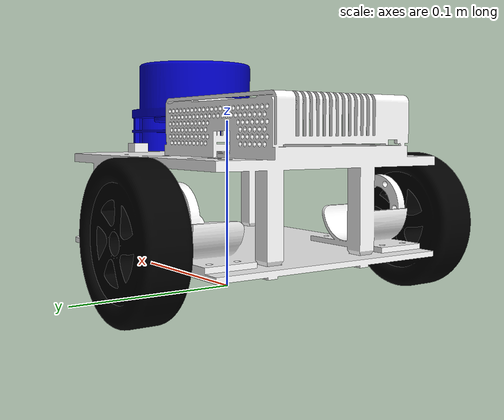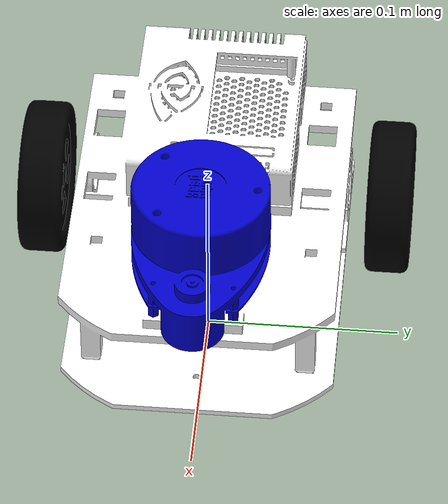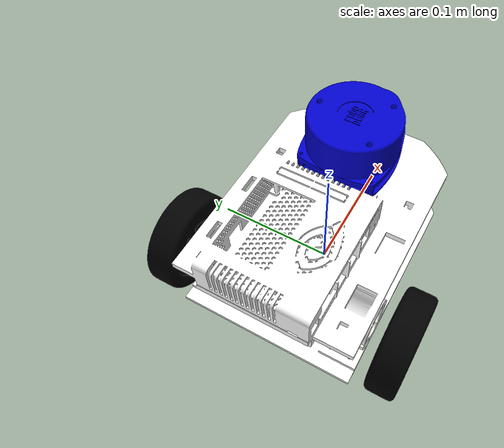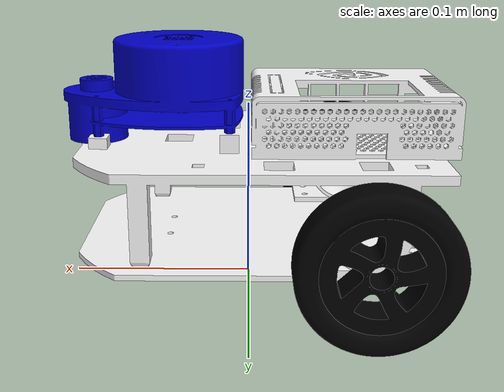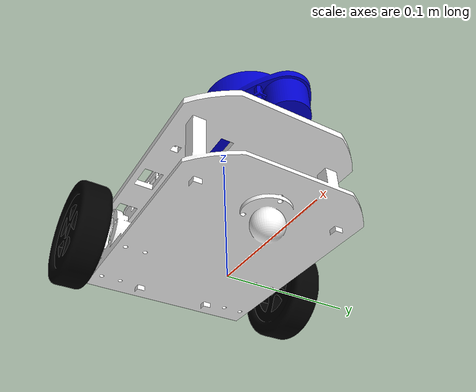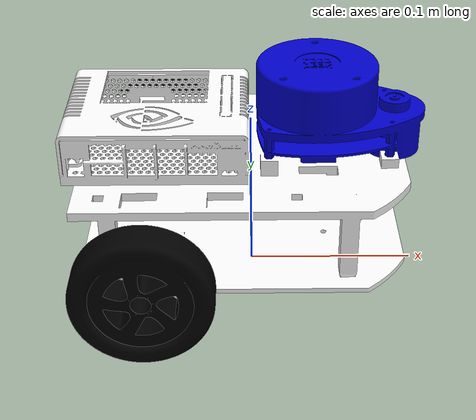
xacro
<?xml version="1.0"?>
<robot name="mobile_robot" xmlns:xacro="http://ros.org/wiki/xacro">

    <material name="blue">
	    <color rgba="0 0 0.8 1"/>
    </material>

    <material name="white">
	    <color rgba="1 1 1 1"/>
    </material>

    <material name="black">
	    <color rgba="0 0 0 1"/>
    </material>

    <material name="green">
        <color rgba="0.0 0.8 0.0 1.0"/>
    </material>

    <link name="base_link">
        <collision>
          <origin rpy="0 0 0" xyz="0 0 0.0005"/>
          <geometry>
            <box size="0.22 0.22 0.001"/>
          </geometry>
        </collision>
    </link>

    <joint name="base_link_joint" type="fixed">
        <origin xyz="0 0 0.026" rpy="0 0 -1.5708" />
        <parent link="base_link" />
        <child link="base_plate" />
    </joint>

    <link name="base_plate">
    <visual>
      <origin rpy="0 0 0" xyz="0.03 0 -0.026"/>
      <geometry>
        <mesh filename="package://mobile_robot_autonomous_navigation/stl/Chasis.stl" scale="0.001 0.001 0.001"/>
      </geometry>
      <material name="white"/>
    </visual>
    <collision>
      <origin rpy="0 0 0" xyz="0.03 0 -0.026"  />
      <geometry>
        <mesh filename="package://mobile_robot_autonomous_navigation/stl/Chasis.stl" scale="0.001 0.001 0.001" />
      </geometry>
    </collision>
    </link>

    <joint name="right_wheel_joint" type="continuous">
        <origin xyz="-0.08 -0.06 0.015" rpy="0 0 0" />
        <parent link="base_plate" />
        <child link="right_wheel" />
        <axis xyz="-1 0 0" />
    </joint>

    <link name="right_wheel">
    <visual>
      <origin rpy="0 0 0" xyz="0.11 0.059 -0.04"/>
      <geometry>
        <mesh filename="package://mobile_robot_autonomous_navigation/stl/Wheel.stl" scale="0.001 0.001 0.001"/>
      </geometry>
      <material name="black"/>
    </visual>
    <collision>
      <origin rpy="0 0 0" xyz="0.11 0.059 -0.04"/>
      <geometry>
        <mesh filename="package://mobile_robot_autonomous_navigation/stl/Wheel.stl" scale="0.001 0.001 0.001" />
      </geometry>
    </collision>
    </link>

    <joint name="left_wheel_joint" type="continuous">
        <origin xyz="0.08 -0.06 0.015" rpy="0 0 0" />
        <parent link="base_plate" />
        <child link="left_wheel" />
        <axis xyz="-1 0 0" />
    </joint>

    <link name="left_wheel">
    <visual>
      <origin rpy="0 0 0" xyz="0.133 0.059 -0.04"/>
      <geometry>
        <mesh filename="package://mobile_robot_autonomous_navigation/stl/Wheel.stl" scale="0.001 0.001 0.001"/>
      </geometry>
      <material name="black"/>
    </visual>
    <collision>
      <origin rpy="0 0 0" xyz="0.133 0.059 -0.04"/>
      <geometry>
        <mesh filename="package://mobile_robot_autonomous_navigation/stl/Wheel.stl" scale="0.001 0.001 0.001" />
      </geometry>
    </collision>
    </link>

    <joint name="laser_joint" type="fixed">
        <origin xyz="0 0.040 0.090" rpy="0 0 1.5708" />
        <parent link="base_plate" />
        <child link="laser" />
    </joint>

    <link name="laser">
    <visual>
      <origin rpy="0 0 -1.5708" xyz="0.084 -0.242 -0.098"/>
      <geometry>
        <mesh filename="package://mobile_robot_autonomous_navigation/stl/RpLidar.stl" scale="0.001 0.001 0.001"/>
      </geometry>
      <material name="blue"/>
    </visual>
    <collision>
      <origin rpy="0 0 0" xyz="0.242 0.084 -0.098"  />
      <geometry>
        <mesh filename="package://mobile_robot_autonomous_navigation/stl/RpLidar.stl" scale="0.001 0.001 0.001" />
      </geometry>
    </collision>
    </link>

</robot>
